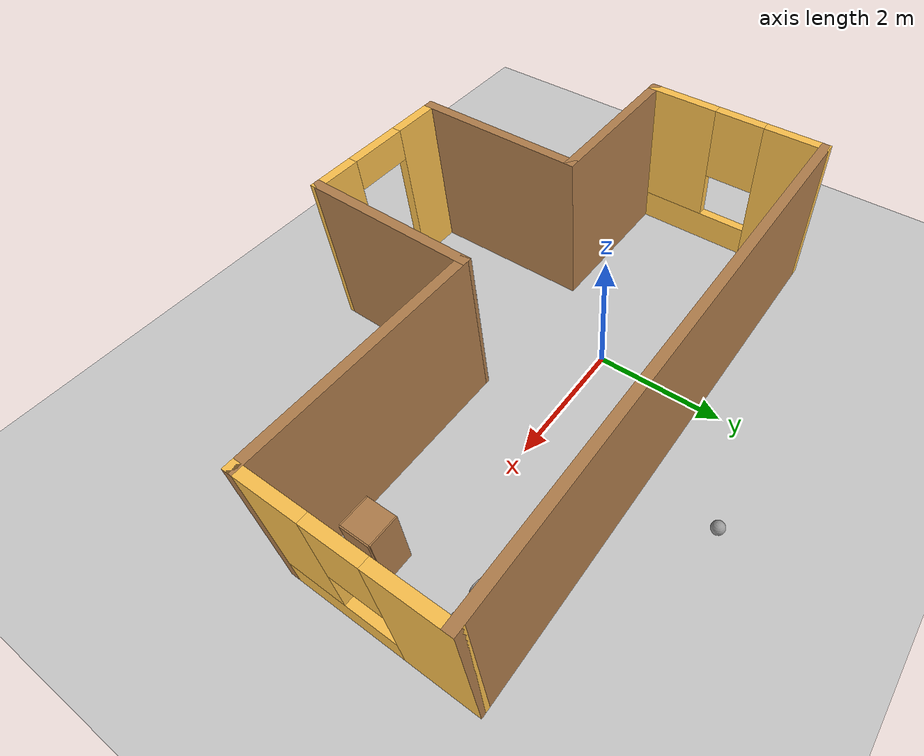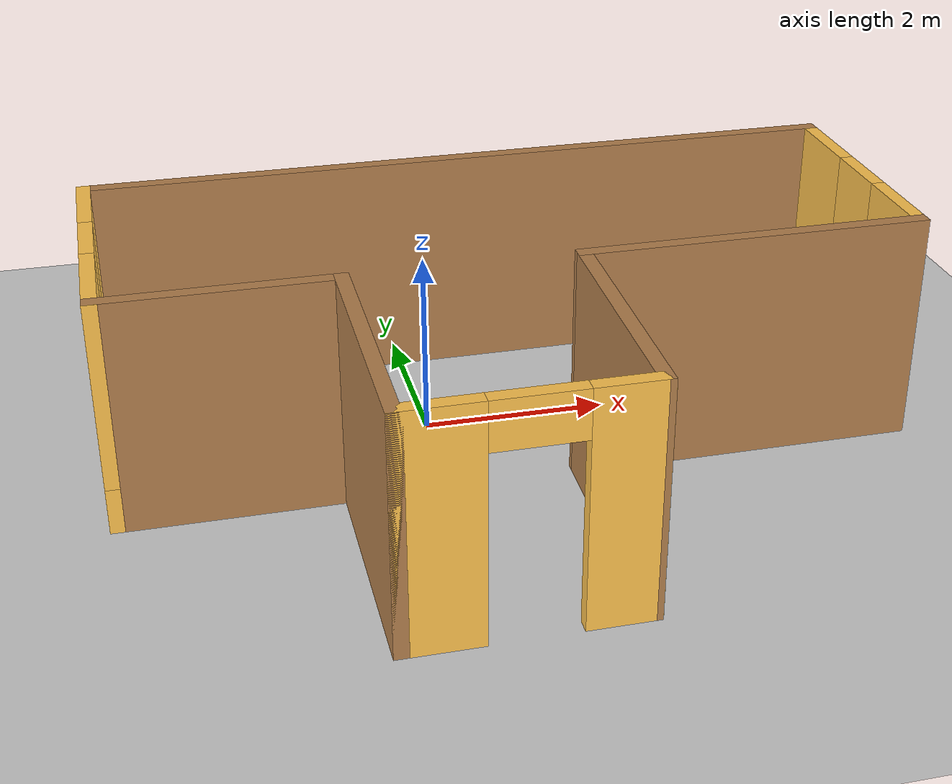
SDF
<sdf version="1.6">
 <world name="default">
  <plugin name="welcome_message" filename="libwelcome_message.so"/>
  <light name="sun" type="directional">
   <pose>0 0 10 0 -0 0</pose>
   <diffuse>0.8 0.8 0.8 1</diffuse>
   <specular>0.2 0.2 0.2 1</specular>
   <attenuation>
    <range>1000</range>
    <constant>0.9</constant>
    <linear>0.01</linear>
    <quadratic>0.001</quadratic>
   </attenuation>
   <direction>-0.5 0.1 -0.9</direction>
  </light>
  <model name="ground_plane">
   <static>1</static>
   <link name="link">
    <collision name="collision">
     <geometry><plane><normal>0 0 1</normal><size>100 100</size></plane></geometry>
     <surface>
      <contact><collide_bitmask>65535</collide_bitmask></contact>
      <friction><ode><mu>100</mu><mu2>50</mu2></ode></friction>
     </surface>
    </collision>
    <visual name="visual">
     <cast_shadows>0</cast_shadows>
     <geometry><plane><normal>0 0 1</normal><size>100 100</size></plane></geometry>
     <material>
      <script><uri>file://media/materials/scripts/gazebo.material</uri><name>Gazebo/Grey</name></script>
     </material>
    </visual>
   </link>
  </model>
  <gravity>0 0 -9.8</gravity>
  <magnetic_field>6e-06 2.3e-05 -4.2e-05</magnetic_field>
  <atmosphere type="adiabatic"/>
  <physics name="default_physics" default="0" type="ode">
   <max_step_size>0.001</max_step_size>
   <real_time_factor>1</real_time_factor>
   <real_time_update_rate>1000</real_time_update_rate>
  </physics>
  <scene><ambient>0.4 0.4 0.4 1</ambient><background>0.7 0.7 0.7 1</background><shadows>1</shadows></scene>
  <audio><device>default</device></audio>
  <spherical_coordinates>
   <surface_model>EARTH_WGS84</surface_model>
   <latitude_deg>0</latitude_deg>
   <longitude_deg>0</longitude_deg>
   <elevation>0</elevation>
   <heading_deg>0</heading_deg>
  </spherical_coordinates>
  <model name="building">
   <pose>0.793993 -0.92787 0 0 -0 0</pose>
   <link name="Wall_0">
    <collision name="Wall_0_Collision">
     <geometry><box><size>8.5 0.15 2.5</size></box></geometry>
     <pose>0 0 1.25 0 -0 0</pose>
    </collision>
    <visual name="Wall_0_Visual">
     <pose>0 0 1.25 0 -0 0</pose>
     <geometry><box><size>8.5 0.15 2.5</size></box></geometry>
     <material>
      <script><uri>file://media/materials/scripts/gazebo.material</uri><name>Gazebo/Wood</name></script>
      <ambient>1 1 1 1</ambient>
     </material>
     <meta><layer>0</layer></meta>
    </visual>
    <pose>-0 2.51809 0 0 -0 0</pose>
   </link>
   <link name="Wall_1">
    <pose>4.175 1.09309 0 0 -0 -1.5708</pose>
    <visual name="Wall_1_Visual_0">
     <pose>-0.93472 0 1.25 0 -0 0</pose>
     <geometry><box><size>1.13056 0.15 2.5</size></box></geometry>
     <material>
      <script><uri>file://media/materials/scripts/gazebo.material</uri><name>Gazebo/Grey</name></script>
      <ambient>1 0.764706 0.305882 1</ambient>
     </material>
     <meta><layer>0</layer></meta>
    </visual>
    <collision name="Wall_1_Collision_0">
     <geometry><box><size>1.13056 0.15 2.5</size></box></geometry>
     <pose>-0.93472 0 1.25 0 -0 0</pose>
    </collision>
    <visual name="Wall_1_Visual_1">
     <pose>0.56528 0 0.25 0 -0 0</pose>
     <geometry><box><size>1.86944 0.15 0.5</size></box></geometry>
     <material>
      <script><uri>file://media/materials/scripts/gazebo.material</uri><name>Gazebo/Grey</name></script>
      <ambient>1 0.764706 0.305882 1</ambient>
     </material>
     <meta><layer>0</layer></meta>
    </visual>
    <collision name="Wall_1_Collision_1">
     <geometry><box><size>1.86944 0.15 0.5</size></box></geometry>
     <pose>0.56528 0 0.25 0 -0 0</pose>
    </collision>
    <visual name="Wall_1_Visual_2">
     <pose>0.96528 0 1.5 0 -0 0</pose>
     <geometry><box><size>1.06944 0.15 2</size></box></geometry>
     <material>
      <script><uri>file://media/materials/scripts/gazebo.material</uri><name>Gazebo/Grey</name></script>
      <ambient>1 0.764706 0.305882 1</ambient>
     </material>
     <meta><layer>0</layer></meta>
    </visual>
    <collision name="Wall_1_Collision_2">
     <geometry><box><size>1.06944 0.15 2</size></box></geometry>
     <pose>0.96528 0 1.5 0 -0 0</pose>
    </collision>
    <visual name="Wall_1_Visual_3">
     <pose>0.030559 0 1.9 0 -0 0</pose>
     <geometry><box><size>0.8 0.15 1.2</size></box></geometry>
     <material>
      <script><uri>file://media/materials/scripts/gazebo.material</uri><name>Gazebo/Grey</name></script>
      <ambient>1 0.764706 0.305882 1</ambient>
     </material>
     <meta><layer>0</layer></meta>
    </visual>
    <collision name="Wall_1_Collision_3">
     <geometry><box><size>0.8 0.15 1.2</size></box></geometry>
     <pose>0.030559 0 1.9 0 -0 0</pose>
    </collision>
   </link>
   <link name="Wall_2">
    <collision name="Wall_2_Collision">
     <geometry><box><size>3.75 0.15 2.5</size></box></geometry>
     <pose>0 0 1.25 0 -0 0</pose>
    </collision>
    <visual name="Wall_2_Visual">
     <pose>0 0 1.25 0 -0 0</pose>
     <geometry><box><size>3.75 0.15 2.5</size></box></geometry>
     <material>
      <script><uri>file://media/materials/scripts/gazebo.material</uri><name>Gazebo/Wood</name></script>
      <ambient>1 1 1 1</ambient>
     </material>
     <meta><layer>0</layer></meta>
    </visual>
    <pose>2.375 -0.331906 0 0 -0 3.14159</pose>
   </link>
   <link name="Wall_4">
    <pose>-4.175 1.09309 0 0 -0 -1.5708</pose>
    <visual name="Wall_4_Visual_0">
     <pose>-0.995061 0 1.25 0 -0 0</pose>
     <geometry><box><size>1.00988 0.15 2.5</size></box></geometry>
     <material>
      <script><uri>file://media/materials/scripts/gazebo.material</uri><name>Gazebo/Grey</name></script>
      <ambient>1 0.764706 0.305882 1</ambient>
     </material>
     <meta><layer>0</layer></meta>
    </visual>
    <collision name="Wall_4_Collision_0">
     <geometry><box><size>1.00988 0.15 2.5</size></box></geometry>
     <pose>-0.995061 0 1.25 0 -0 0</pose>
    </collision>
    <visual name="Wall_4_Visual_1">
     <pose>0.504939 0 0.25 0 -0 0</pose>
     <geometry><box><size>1.99012 0.15 0.5</size></box></geometry>
     <material>
      <script><uri>file://media/materials/scripts/gazebo.material</uri><name>Gazebo/Grey</name></script>
      <ambient>1 0.764706 0.305882 1</ambient>
     </material>
     <meta><layer>0</layer></meta>
    </visual>
    <collision name="Wall_4_Collision_1">
     <geometry><box><size>1.99012 0.15 0.5</size></box></geometry>
     <pose>0.504939 0 0.25 0 -0 0</pose>
    </collision>
    <visual name="Wall_4_Visual_2">
     <pose>0.904939 0 1.5 0 -0 0</pose>
     <geometry><box><size>1.19012 0.15 2</size></box></geometry>
     <material>
      <script><uri>file://media/materials/scripts/gazebo.material</uri><name>Gazebo/Grey</name></script>
      <ambient>1 0.764706 0.305882 1</ambient>
     </material>
     <meta><layer>0</layer></meta>
    </visual>
    <collision name="Wall_4_Collision_2">
     <geometry><box><size>1.19012 0.15 2</size></box></geometry>
     <pose>0.904939 0 1.5 0 -0 0</pose>
    </collision>
    <visual name="Wall_4_Visual_3">
     <pose>-0.090122 0 1.9 0 -0 0</pose>
     <geometry><box><size>0.8 0.15 1.2</size></box></geometry>
     <material>
      <script><uri>file://media/materials/scripts/gazebo.material</uri><name>Gazebo/Grey</name></script>
      <ambient>1 0.764706 0.305882 1</ambient>
     </material>
     <meta><layer>0</layer></meta>
    </visual>
    <collision name="Wall_4_Collision_3">
     <geometry><box><size>0.8 0.15 1.2</size></box></geometry>
     <pose>-0.090122 0 1.9 0 -0 0</pose>
    </collision>
   </link>
   <link name="Wall_5">
    <collision name="Wall_5_Collision">
     <geometry><box><size>2.5 0.15 2.5</size></box></geometry>
     <pose>0 0 1.25 0 -0 0</pose>
    </collision>
    <visual name="Wall_5_Visual">
     <pose>0 0 1.25 0 -0 0</pose>
     <geometry><box><size>2.5 0.15 2.5</size></box></geometry>
     <material>
      <script><uri>file://media/materials/scripts/gazebo.material</uri><name>Gazebo/Wood</name></script>
      <ambient>1 1 1 1</ambient>
     </material>
     <meta><layer>0</layer></meta>
    </visual>
    <pose>-3 -0.331906 0 0 -0 0</pose>
   </link>
   <link name="Wall_7">
    <collision name="Wall_7_Collision">
     <geometry><box><size>2.75 0.15 2.5</size></box></geometry>
     <pose>0 0 1.25 0 -0 0</pose>
    </collision>
    <visual name="Wall_7_Visual">
     <pose>0 0 1.25 0 -0 0</pose>
     <geometry><box><size>2.75 0.15 2.5</size></box></geometry>
     <material>
      <script><uri>file://media/materials/scripts/gazebo.material</uri><name>Gazebo/Wood</name></script>
      <ambient>1 1 1 1</ambient>
     </material>
     <meta><layer>0</layer></meta>
    </visual>
    <pose>-1.825 -1.63191 0 0 -0 -1.5708</pose>
   </link>
   <link name="Wall_8">
    <pose>-0.65 -2.93191 0 0 -0 0</pose>
    <visual name="Wall_8_Visual_0">
     <pose>-0.819317 0 1.25 0 -0 0</pose>
     <geometry><box><size>0.861366 0.15 2.5</size></box></geometry>
     <material>
      <script><uri>file://media/materials/scripts/gazebo.material</uri><name>Gazebo/Grey</name></script>
      <ambient>1 0.764706 0.305882 1</ambient>
     </material>
     <meta><layer>0</layer></meta>
    </visual>
    <collision name="Wall_8_Collision_0">
     <geometry><box><size>0.861366 0.15 2.5</size></box></geometry>
     <pose>-0.819317 0 1.25 0 -0 0</pose>
    </collision>
    <visual name="Wall_8_Visual_1">
     <pose>0.880683 0 1.25 0 -0 0</pose>
     <geometry><box><size>0.738634 0.15 2.5</size></box></geometry>
     <material>
      <script><uri>file://media/materials/scripts/gazebo.material</uri><name>Gazebo/Grey</name></script>
      <ambient>1 0.764706 0.305882 1</ambient>
     </material>
     <meta><layer>0</layer></meta>
    </visual>
    <collision name="Wall_8_Collision_1">
     <geometry><box><size>0.738634 0.15 2.5</size></box></geometry>
     <pose>0.880683 0 1.25 0 -0 0</pose>
    </collision>
    <visual name="Wall_8_Visual_2">
     <pose>0.061366 0 2.25 0 -0 0</pose>
     <geometry><box><size>0.9 0.15 0.5</size></box></geometry>
     <material>
      <script><uri>file://media/materials/scripts/gazebo.material</uri><name>Gazebo/Grey</name></script>
      <ambient>1 0.764706 0.305882 1</ambient>
     </material>
     <meta><layer>0</layer></meta>
    </visual>
    <collision name="Wall_8_Collision_2">
     <geometry><box><size>0.9 0.15 0.5</size></box></geometry>
     <pose>0.061366 0 2.25 0 -0 0</pose>
    </collision>
   </link>
   <link name="Wall_9">
    <collision name="Wall_9_Collision">
     <geometry><box><size>2.75 0.15 2.5</size></box></geometry>
     <pose>0 0 1.25 0 -0 0</pose>
    </collision>
    <visual name="Wall_9_Visual">
     <pose>0 0 1.25 0 -0 0</pose>
     <geometry><box><size>2.75 0.15 2.5</size></box></geometry>
     <material>
      <script><uri>file://media/materials/scripts/gazebo.material</uri><name>Gazebo/Wood</name></script>
      <ambient>1 1 1 1</ambient>
     </material>
     <meta><layer>0</layer></meta>
    </visual>
    <pose>0.55 -1.63191 0 0 -0 1.55157</pose>
   </link>
   <static>1</static>
  </model>
  <model name="robot">
   <link name="link_0">
    <inertial>
     <mass>1</mass>
     <inertia>
      <ixx>0.166667</ixx>
      <ixy>0</ixy>
      <ixz>0</ixz>
      <iyy>0.166667</iyy>
      <iyz>0</iyz>
      <izz>0.166667</izz>
     </inertia>
    </inertial>
    <pose>0 -1e-06 0.008006 0 -0 0</pose>
    <visual name="visual">
     <geometry><box><size>1 0.5 0.2</size></box></geometry>
     <material>
      <lighting>1</lighting>
      <script><uri>file://media/materials/scripts/gazebo.material</uri><name>Gazebo/Grey</name></script>
      <shader type="pixel"><normal_map>__default__</normal_map></shader>
      <ambient>0.3 0.3 0.3 1</ambient>
      <diffuse>0.7 0.7 0.7 1</diffuse>
      <specular>0.01 0.01 0.01 1</specular>
      <emissive>0 0 0 1</emissive>
     </material>
    </visual>
    <collision name="collision">
     <geometry><box><size>1 0.5 0.2</size></box></geometry>
     <surface>
      <friction>
       <ode><mu>1</mu><mu2>1</mu2><fdir1>0 0 0</fdir1><slip1>0</slip1><slip2>0</slip2></ode>
       <torsional>
        <coefficient>1</coefficient>
        <patch_radius>0</patch_radius>
        <surface_radius>0</surface_radius>
        <use_patch_radius>1</use_patch_radius>
        <ode><slip>0</slip></ode>
       </torsional>
      </friction>
      <bounce><restitution_coefficient>0</restitution_coefficient><threshold>1e+06</threshold></bounce>
      <contact>
       <collide_without_contact>0</collide_without_contact>
       <collide_without_contact_bitmask>1</collide_without_contact_bitmask>
       <collide_bitmask>1</collide_bitmask>
       <ode>
        <soft_cfm>0</soft_cfm>
        <soft_erp>0.2</soft_erp>
        <kp>1e+13</kp>
        <kd>1</kd>
        <max_vel>0.01</max_vel>
        <min_depth>0</min_depth>
       </ode>
       <bullet>
        <split_impulse>1</split_impulse>
        <split_impulse_penetration_threshold>-0.01</split_impulse_penetration_threshold>
        <soft_cfm>0</soft_cfm>
        <soft_erp>0.2</soft_erp>
        <kp>1e+13</kp>
        <kd>1</kd>
       </bullet>
      </contact>
     </surface>
    </collision>
   </link>
   <link name="link_1">
    <inertial>
     <mass>1</mass>
     <inertia><ixx>0.145833</ixx><ixy>0</ixy><ixz>0</ixz><iyy>0.145833</iyy><iyz>0</iyz><izz>0.125</izz></inertia>
    </inertial>
    <pose>-0.35 -0.30002 -0.002008 1.5707 -0 0</pose>
    <visual name="visual">
     <geometry><cylinder><radius>0.15</radius><length>0.1</length></cylinder></geometry>
     <material>
      <lighting>1</lighting>
      <script><uri>file://media/materials/scripts/gazebo.material</uri><name>Gazebo/Grey</name></script>
      <shader type="pixel"><normal_map>__default__</normal_map></shader>
      <ambient>0.3 0.3 0.3 1</ambient>
      <diffuse>0.7 0.7 0.7 1</diffuse>
      <specular>0.01 0.01 0.01 1</specular>
      <emissive>0 0 0 1</emissive>
     </material>
    </visual>
    <collision name="collision">
     <geometry><cylinder><radius>0.15</radius><length>0.1</length></cylinder></geometry>
     <surface>
      <friction>
       <ode><mu>1</mu><mu2>1</mu2><fdir1>0 0 0</fdir1><slip1>0</slip1><slip2>0</slip2></ode>
       <torsional>
        <coefficient>1</coefficient>
        <patch_radius>0</patch_radius>
        <surface_radius>0</surface_radius>
        <use_patch_radius>1</use_patch_radius>
        <ode><slip>0</slip></ode>
       </torsional>
      </friction>
      <bounce><restitution_coefficient>0</restitution_coefficient><threshold>1e+06</threshold></bounce>
      <contact>
       <collide_without_contact>0</collide_without_contact>
       <collide_without_contact_bitmask>1</collide_without_contact_bitmask>
       <collide_bitmask>1</collide_bitmask>
       <ode>
        <soft_cfm>0</soft_cfm>
        <soft_erp>0.2</soft_erp>
        <kp>1e+13</kp>
        <kd>1</kd>
        <max_vel>0.01</max_vel>
        <min_depth>0</min_depth>
       </ode>
       <bullet>
        <split_impulse>1</split_impulse>
        <split_impulse_penetration_threshold>-0.01</split_impulse_penetration_threshold>
        <soft_cfm>0</soft_cfm>
        <soft_erp>0.2</soft_erp>
        <kp>1e+13</kp>
        <kd>1</kd>
       </bullet>
      </contact>
     </surface>
    </collision>
   </link>
   <link name="link_1_clone">
    <inertial>
     <mass>1</mass>
     <inertia><ixx>0.145833</ixx><ixy>0</ixy><ixz>0</ixz><iyy>0.145833</iyy><iyz>0</iyz><izz>0.125</izz></inertia>
    </inertial>
    <pose>0.35 0.300018 -0.001999 1.5707 -0 0</pose>
    <visual name="visual">
     <geometry><cylinder><radius>0.15</radius><length>0.1</length></cylinder></geometry>
     <material>
      <lighting>1</lighting>
      <script><uri>file://media/materials/scripts/gazebo.material</uri><name>Gazebo/Grey</name></script>
      <shader type="pixel"><normal_map>__default__</normal_map></shader>
      <ambient>0.3 0.3 0.3 1</ambient>
      <diffuse>0.7 0.7 0.7 1</diffuse>
      <specular>0.01 0.01 0.01 1</specular>
      <emissive>0 0 0 1</emissive>
     </material>
    </visual>
    <collision name="collision">
     <geometry><cylinder><radius>0.15</radius><length>0.1</length></cylinder></geometry>
     <surface>
      <friction>
       <ode><mu>1</mu><mu2>1</mu2><fdir1>0 0 0</fdir1><slip1>0</slip1><slip2>0</slip2></ode>
       <torsional>
        <coefficient>1</coefficient>
        <patch_radius>0</patch_radius>
        <surface_radius>0</surface_radius>
        <use_patch_radius>1</use_patch_radius>
        <ode><slip>0</slip></ode>
       </torsional>
      </friction>
      <bounce><restitution_coefficient>0</restitution_coefficient><threshold>1e+06</threshold></bounce>
      <contact>
       <collide_without_contact>0</collide_without_contact>
       <collide_without_contact_bitmask>1</collide_without_contact_bitmask>
       <collide_bitmask>1</collide_bitmask>
       <ode>
        <soft_cfm>0</soft_cfm>
        <soft_erp>0.2</soft_erp>
        <kp>1e+13</kp>
        <kd>1</kd>
        <max_vel>0.01</max_vel>
        <min_depth>0</min_depth>
       </ode>
       <bullet>
        <split_impulse>1</split_impulse>
        <split_impulse_penetration_threshold>-0.01</split_impulse_penetration_threshold>
        <soft_cfm>0</soft_cfm>
        <soft_erp>0.2</soft_erp>
        <kp>1e+13</kp>
        <kd>1</kd>
       </bullet>
      </contact>
     </surface>
    </collision>
   </link>
   <link name="link_1_clone_0">
    <inertial>
     <mass>1</mass>
     <inertia><ixx>0.145833</ixx><ixy>0</ixy><ixz>0</ixz><iyy>0.145833</iyy><iyz>0</iyz><izz>0.125</izz></inertia>
    </inertial>
    <pose>0.35 -0.300015 -0.001999 1.5707 -0 0</pose>
    <visual name="visual">
     <geometry><cylinder><radius>0.15</radius><length>0.1</length></cylinder></geometry>
     <material>
      <lighting>1</lighting>
      <script><uri>file://media/materials/scripts/gazebo.material</uri><name>Gazebo/Grey</name></script>
      <shader type="pixel"><normal_map>__default__</normal_map></shader>
      <ambient>0.3 0.3 0.3 1</ambient>
      <diffuse>0.7 0.7 0.7 1</diffuse>
      <specular>0.01 0.01 0.01 1</specular>
      <emissive>0 0 0 1</emissive>
     </material>
    </visual>
    <collision name="collision">
     <geometry><cylinder><radius>0.15</radius><length>0.1</length></cylinder></geometry>
     <surface>
      <friction>
       <ode><mu>1</mu><mu2>1</mu2><fdir1>0 0 0</fdir1><slip1>0</slip1><slip2>0</slip2></ode>
       <torsional>
        <coefficient>1</coefficient>
        <patch_radius>0</patch_radius>
        <surface_radius>0</surface_radius>
        <use_patch_radius>1</use_patch_radius>
        <ode><slip>0</slip></ode>
       </torsional>
      </friction>
      <bounce><restitution_coefficient>0</restitution_coefficient><threshold>1e+06</threshold></bounce>
      <contact>
       <collide_without_contact>0</collide_without_contact>
       <collide_without_contact_bitmask>1</collide_without_contact_bitmask>
       <collide_bitmask>1</collide_bitmask>
       <ode>
        <soft_cfm>0</soft_cfm>
        <soft_erp>0.2</soft_erp>
        <kp>1e+13</kp>
        <kd>1</kd>
        <max_vel>0.01</max_vel>
        <min_depth>0</min_depth>
       </ode>
       <bullet>
        <split_impulse>1</split_impulse>
        <split_impulse_penetration_threshold>-0.01</split_impulse_penetration_threshold>
        <soft_cfm>0</soft_cfm>
        <soft_erp>0.2</soft_erp>
        <kp>1e+13</kp>
        <kd>1</kd>
       </bullet>
      </contact>
     </surface>
    </collision>
   </link>
   <link name="link_1_clone_1">
    <inertial>
     <mass>1</mass>
     <inertia><ixx>0.145833</ixx><ixy>0</ixy><ixz>0</ixz><iyy>0.145833</iyy><iyz>0</iyz><izz>0.125</izz></inertia>
    </inertial>
    <pose>-0.35 0.300018 -0.001999 1.5707 -0 0</pose>
    <visual name="visual">
     <geometry><cylinder><radius>0.15</radius><length>0.1</length></cylinder></geometry>
     <material>
      <lighting>1</lighting>
      <script><uri>file://media/materials/scripts/gazebo.material</uri><name>Gazebo/Grey</name></script>
      <shader type="pixel"><normal_map>__default__</normal_map></shader>
      <ambient>0.3 0.3 0.3 1</ambient>
      <diffuse>0.7 0.7 0.7 1</diffuse>
      <specular>0.01 0.01 0.01 1</specular>
      <emissive>0 0 0 1</emissive>
     </material>
    </visual>
    <collision name="collision">
     <geometry><cylinder><radius>0.15</radius><length>0.1</length></cylinder></geometry>
     <surface>
      <friction>
       <ode><mu>1</mu><mu2>1</mu2><fdir1>0 0 0</fdir1><slip1>0</slip1><slip2>0</slip2></ode>
       <torsional>
        <coefficient>1</coefficient>
        <patch_radius>0</patch_radius>
        <surface_radius>0</surface_radius>
        <use_patch_radius>1</use_patch_radius>
        <ode><slip>0</slip></ode>
       </torsional>
      </friction>
      <bounce><restitution_coefficient>0</restitution_coefficient><threshold>1e+06</threshold></bounce>
      <contact>
       <collide_without_contact>0</collide_without_contact>
       <collide_without_contact_bitmask>1</collide_without_contact_bitmask>
       <collide_bitmask>1</collide_bitmask>
       <ode>
        <soft_cfm>0</soft_cfm>
        <soft_erp>0.2</soft_erp>
        <kp>1e+13</kp>
        <kd>1</kd>
        <max_vel>0.01</max_vel>
        <min_depth>0</min_depth>
       </ode>
       <bullet>
        <split_impulse>1</split_impulse>
        <split_impulse_penetration_threshold>-0.01</split_impulse_penetration_threshold>
        <soft_cfm>0</soft_cfm>
        <soft_erp>0.2</soft_erp>
        <kp>1e+13</kp>
        <kd>1</kd>
       </bullet>
      </contact>
     </surface>
    </collision>
   </link>
   <joint name="link_0_JOINT_0" type="revolute">
    <parent>link_0</parent>
    <child>link_1_clone_1</child>
    <axis>
     <xyz>0 0 1</xyz>
     <use_parent_model_frame>0</use_parent_model_frame>
     <limit>
      <lower>-1.79769e+308</lower>
      <upper>1.79769e+308</upper>
      <effort>-1</effort>
      <velocity>-1</velocity>
     </limit>
     <dynamics>
      <spring_reference>0</spring_reference>
      <spring_stiffness>0</spring_stiffness>
      <damping>0</damping>
     </dynamics>
    </axis>
    <physics>
     <ode><limit><cfm>0</cfm><erp>0.2</erp></limit><suspension><cfm>0</cfm><erp>0.2</erp></suspension></ode>
    </physics>
   </joint>
   <joint name="link_0_JOINT_1" type="revolute">
    <parent>link_0</parent>
    <child>link_1</child>
    <axis>
     <xyz>0 0 1</xyz>
     <use_parent_model_frame>0</use_parent_model_frame>
     <limit>
      <lower>-1.79769e+308</lower>
      <upper>1.79769e+308</upper>
      <effort>-1</effort>
      <velocity>-1</velocity>
     </limit>
     <dynamics>
      <spring_reference>0</spring_reference>
      <spring_stiffness>0</spring_stiffness>
      <damping>0</damping>
     </dynamics>
    </axis>
    <physics>
     <ode><limit><cfm>0</cfm><erp>0.2</erp></limit><suspension><cfm>0</cfm><erp>0.2</erp></suspension></ode>
    </physics>
   </joint>
   <joint name="link_0_JOINT_2" type="revolute">
    <parent>link_0</parent>
    <child>link_1_clone</child>
    <axis>
     <xyz>0 0 1</xyz>
     <use_parent_model_frame>0</use_parent_model_frame>
     <limit>
      <lower>-1.79769e+308</lower>
      <upper>1.79769e+308</upper>
      <effort>-1</effort>
      <velocity>-1</velocity>
     </limit>
     <dynamics>
      <spring_reference>0</spring_reference>
      <spring_stiffness>0</spring_stiffness>
      <damping>0</damping>
     </dynamics>
    </axis>
    <physics>
     <ode><limit><cfm>0</cfm><erp>0.2</erp></limit><suspension><cfm>0</cfm><erp>0.2</erp></suspension></ode>
    </physics>
   </joint>
   <joint name="link_0_JOINT_3" type="revolute">
    <parent>link_0</parent>
    <child>link_1_clone_0</child>
    <axis>
     <xyz>0 0 1</xyz>
     <use_parent_model_frame>0</use_parent_model_frame>
     <limit>
      <lower>-1.79769e+308</lower>
      <upper>1.79769e+308</upper>
      <effort>-1</effort>
      <velocity>-1</velocity>
     </limit>
     <dynamics>
      <spring_reference>0</spring_reference>
      <spring_stiffness>0</spring_stiffness>
      <damping>0</damping>
     </dynamics>
    </axis>
    <physics>
     <ode><limit><cfm>0</cfm><erp>0.2</erp></limit><suspension><cfm>0</cfm><erp>0.2</erp></suspension></ode>
    </physics>
   </joint>
   <joint name="link_0_JOINT_4" type="revolute">
    <parent>link_0</parent>
    <child>link_1_clone_0</child>
    <axis>
     <xyz>0 0 1</xyz>
     <use_parent_model_frame>0</use_parent_model_frame>
     <limit>
      <lower>-1.79769e+308</lower>
      <upper>1.79769e+308</upper>
      <effort>-1</effort>
      <velocity>-1</velocity>
     </limit>
     <dynamics>
      <spring_reference>0</spring_reference>
      <spring_stiffness>0</spring_stiffness>
      <damping>0</damping>
     </dynamics>
    </axis>
    <physics>
     <ode><limit><cfm>0</cfm><erp>0.2</erp></limit><suspension><cfm>0</cfm><erp>0.2</erp></suspension></ode>
    </physics>
   </joint>
   <joint name="link_0_JOINT_5" type="revolute">
    <parent>link_0</parent>
    <child>link_1</child>
    <axis>
     <xyz>0 0 1</xyz>
     <use_parent_model_frame>0</use_parent_model_frame>
     <limit>
      <lower>-1.79769e+308</lower>
      <upper>1.79769e+308</upper>
      <effort>-1</effort>
      <velocity>-1</velocity>
     </limit>
     <dynamics>
      <spring_reference>0</spring_reference>
      <spring_stiffness>0</spring_stiffness>
      <damping>0</damping>
     </dynamics>
    </axis>
    <physics>
     <ode><limit><cfm>0</cfm><erp>0.2</erp></limit><suspension><cfm>0</cfm><erp>0.2</erp></suspension></ode>
    </physics>
   </joint>
   <joint name="link_0_JOINT_6" type="revolute">
    <parent>link_0</parent>
    <child>link_1_clone_1</child>
    <axis>
     <xyz>0 0 1</xyz>
     <use_parent_model_frame>0</use_parent_model_frame>
     <limit>
      <lower>-1.79769e+308</lower>
      <upper>1.79769e+308</upper>
      <effort>-1</effort>
      <velocity>-1</velocity>
     </limit>
     <dynamics>
      <spring_reference>0</spring_reference>
      <spring_stiffness>0</spring_stiffness>
      <damping>0</damping>
     </dynamics>
    </axis>
    <physics>
     <ode><limit><cfm>0</cfm><erp>0.2</erp></limit><suspension><cfm>0</cfm><erp>0.2</erp></suspension></ode>
    </physics>
   </joint>
   <joint name="link_0_JOINT_7" type="revolute">
    <parent>link_0</parent>
    <child>link_1_clone</child>
    <axis>
     <xyz>0 0 1</xyz>
     <use_parent_model_frame>0</use_parent_model_frame>
     <limit>
      <lower>-1.79769e+308</lower>
      <upper>1.79769e+308</upper>
      <effort>-1</effort>
      <velocity>-1</velocity>
     </limit>
     <dynamics>
      <spring_reference>0</spring_reference>
      <spring_stiffness>0</spring_stiffness>
      <damping>0</damping>
     </dynamics>
    </axis>
    <physics>
     <ode><limit><cfm>0</cfm><erp>0.2</erp></limit><suspension><cfm>0</cfm><erp>0.2</erp></suspension></ode>
    </physics>
   </joint>
   <static>0</static>
   <pose>4.32531 0.993029 0.152008 -3e-06 1e-05 -0.230097</pose>
  </model>
  <model name="cabinet">
   <static>1</static>
   <link name="cabinet_bottom_plate">
    <inertial>
     <pose>0 0 -1 0 -0 0</pose>
     <inertia><ixx>2.05</ixx><ixy>0</ixy><ixz>0</ixz><iyy>2.05</iyy><iyz>0</iyz><izz>2.05</izz></inertia>
     <mass>25</mass>
    </inertial>
    <collision name="cabinet_bottom_plate_geom">
     <pose>0 0 0.01 0 -0 0</pose>
     <geometry><box><size>0.45 0.45 0.02</size></box></geometry>
    </collision>
    <visual name="cabinet_bottom_plate_geom_visual">
     <pose>0 0 0.01 0 -0 0</pose>
     <geometry><box><size>0.45 0.45 0.02</size></box></geometry>
     <material>
      <script><uri>file://media/materials/scripts/gazebo.material</uri><name>Gazebo/Wood</name></script>
     </material>
    </visual>
    <collision name="cabinet_bottom_plate_geom_cabinet_back_plate">
     <pose>0.235 0 0.51 0 -0 0</pose>
     <geometry><box><size>0.02 0.45 1.02</size></box></geometry>
    </collision>
    <visual name="cabinet_bottom_plate_geom_cabinet_back_plate_visual">
     <pose>0.235 0 0.51 0 -0 0</pose>
     <geometry><box><size>0.02 0.45 1.02</size></box></geometry>
     <material>
      <script><uri>file://media/materials/scripts/gazebo.material</uri><name>Gazebo/Wood</name></script>
     </material>
    </visual>
    <collision name="cabinet_bottom_plate_geom_cabinet_left_plate">
     <pose>0 0.235 0.51 0 -0 0</pose>
     <geometry><box><size>0.45 0.02 1.02</size></box></geometry>
    </collision>
    <visual name="cabinet_bottom_plate_geom_cabinet_left_plate_visual">
     <pose>0 0.235 0.51 0 -0 0</pose>
     <geometry><box><size>0.45 0.02 1.02</size></box></geometry>
     <material>
      <script><uri>file://media/materials/scripts/gazebo.material</uri><name>Gazebo/Wood</name></script>
     </material>
    </visual>
    <collision name="cabinet_bottom_plate_geom_cabinet_middle_plate">
     <pose>0 0 0.51 0 -0 0</pose>
     <geometry><box><size>0.45 0.45 0.02</size></box></geometry>
    </collision>
    <visual name="cabinet_bottom_plate_geom_cabinet_middle_plate_visual">
     <pose>0 0 0.51 0 -0 0</pose>
     <geometry><box><size>0.45 0.45 0.02</size></box></geometry>
     <material>
      <script><uri>file://media/materials/scripts/gazebo.material</uri><name>Gazebo/Wood</name></script>
     </material>
    </visual>
    <collision name="cabinet_bottom_plate_geom_cabinet_right_plate">
     <pose>0 -0.235 0.51 0 -0 0</pose>
     <geometry><box><size>0.45 0.02 1.02</size></box></geometry>
    </collision>
    <visual name="cabinet_bottom_plate_geom_cabinet_right_plate_visual">
     <pose>0 -0.235 0.51 0 -0 0</pose>
     <geometry><box><size>0.45 0.02 1.02</size></box></geometry>
     <material>
      <script><uri>file://media/materials/scripts/gazebo.material</uri><name>Gazebo/Wood</name></script>
     </material>
    </visual>
    <collision name="cabinet_bottom_plate_geom_cabinet_top_plate">
     <pose>0 0 1.01 0 -0 0</pose>
     <geometry><box><size>0.45 0.45 0.02</size></box></geometry>
    </collision>
    <visual name="cabinet_bottom_plate_geom_cabinet_top_plate_visual">
     <pose>0 0 1.01 0 -0 0</pose>
     <geometry><box><size>0.45 0.45 0.02</size></box></geometry>
     <material>
      <script><uri>file://media/materials/scripts/gazebo.material</uri><name>Gazebo/Wood</name></script>
     </material>
    </visual>
   </link>
   <pose>4.25321 -0.515844 0 0 -0 0</pose>
  </model>
  <model name="my_ball">
   <link name="link">
    <inertial>
     <mass>1</mass>
     <inertia><ixx>0.1</ixx><ixy>0</ixy><ixz>0</ixz><iyy>0.1</iyy><iyz>0</iyz><izz>0.1</izz></inertia>
    </inertial>
    <visual name="visual">
     <geometry><sphere><radius>0.1</radius></sphere></geometry>
     <material>
      <script><name>Gazebo/Grey</name><uri>file://media/materials/scripts/gazebo.material</uri></script>
      <shader type="pixel"><normal_map>__default__</normal_map></shader>
      <ambient>1 1 1 1</ambient>
      <diffuse>1 1 1 1</diffuse>
      <specular>1 1 1 1</specular>
      <emissive>1 1 1 1</emissive>
     </material>
    </visual>
    <collision name="collision">
     <geometry><sphere><radius>0.1</radius></sphere></geometry>
     <surface>
      <friction>
       <ode><mu>1</mu><mu2>1</mu2><fdir1>0 0 0</fdir1><slip1>0</slip1><slip2>0</slip2></ode>
       <torsional>
        <coefficient>1</coefficient>
        <patch_radius>0</patch_radius>
        <surface_radius>0</surface_radius>
        <use_patch_radius>1</use_patch_radius>
        <ode><slip>0</slip></ode>
       </torsional>
      </friction>
      <bounce><restitution_coefficient>0</restitution_coefficient><threshold>1e+06</threshold></bounce>
      <contact>
       <collide_without_contact>0</collide_without_contact>
       <collide_without_contact_bitmask>1</collide_without_contact_bitmask>
       <collide_bitmask>1</collide_bitmask>
       <ode>
        <soft_cfm>0</soft_cfm>
        <soft_erp>0.2</soft_erp>
        <kp>1e+13</kp>
        <kd>1</kd>
        <max_vel>0.01</max_vel>
        <min_depth>0</min_depth>
       </ode>
       <bullet>
        <split_impulse>1</split_impulse>
        <split_impulse_penetration_threshold>-0.01</split_impulse_penetration_threshold>
        <soft_cfm>0</soft_cfm>
        <soft_erp>0.2</soft_erp>
        <kp>1e+13</kp>
        <kd>1</kd>
       </bullet>
      </contact>
     </surface>
    </collision>
   </link>
   <static>0</static>
   <pose>1.58319 2.78019 0.1 0 -0 0</pose>
  </model>
 </world>
</sdf>
